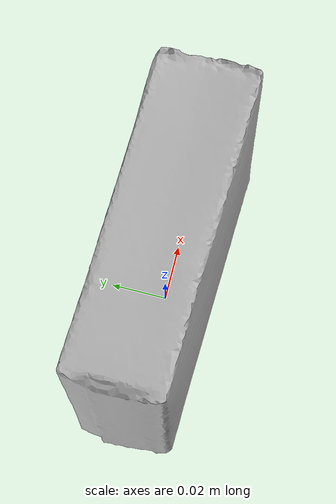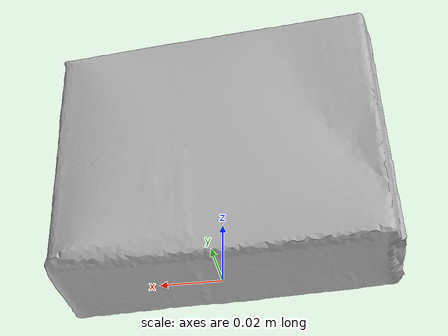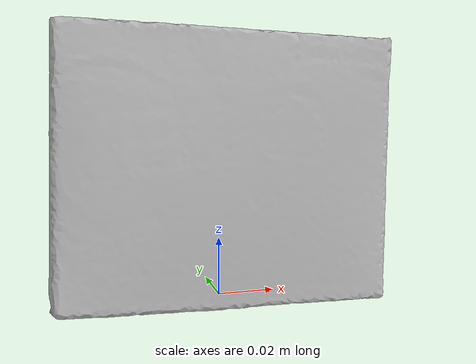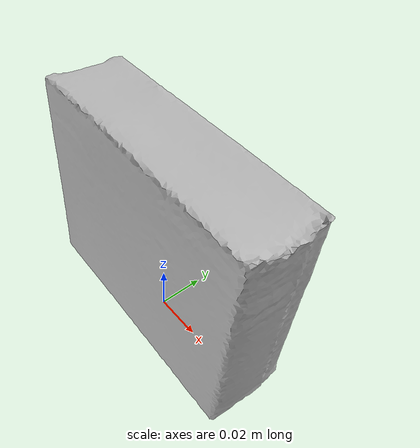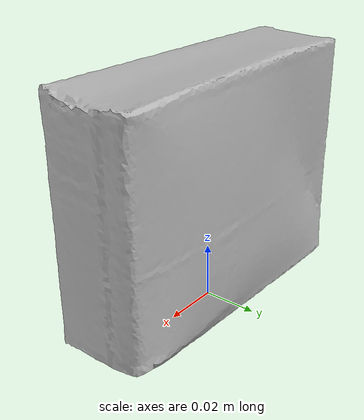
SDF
<?xml version="1.0"?>

<sdf version="1.7">

  <model name='pudding_box'>

    <link name='pudding_box_link'>

      <inertial>
        <!-- CoM evaluated using Meshlab assuming a homogeneous body-->
        <!-- expressed w.r.t. the origin of the mesh -->
        <pose>0.0007319575846704796 0.00027316657131084697 0.04441599683860103 0 0 0</pose>
        <mass>0.1</mass>
        <inertia>
          <!-- Obtained from Meshlab -->
          <ixx>7.336252036635685e-05</ixx>
          <ixy>-1.890622701471698e-06</ixy>
          <ixz>-6.974562529560548e-07</ixz>
          <iyy>0.0001612440611005154</iyy>
          <iyz>6.258865744934437e-07</iyz>
          <izz>0.00010886137507079624</izz>
        </inertia>
      </inertial>

      <collision name='pudding_box_collision'>
        <max_contacts>1</max_contacts>
        <geometry>
          <mesh>
            <uri>model://pudding_box/meshes/obj_000007_collision.dae</uri>
          </mesh>
        </geometry>
      </collision>

      <visual name='pudding_box_visual'>
        <geometry>
          <mesh>
            <uri>model://pudding_box/meshes/obj_000007.dae</uri>
          </mesh>
        </geometry>
      </visual>

    </link>

  </model>

</sdf>
